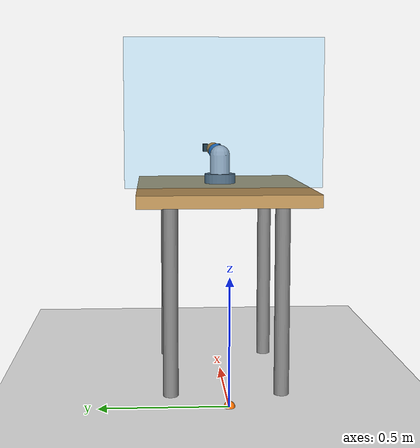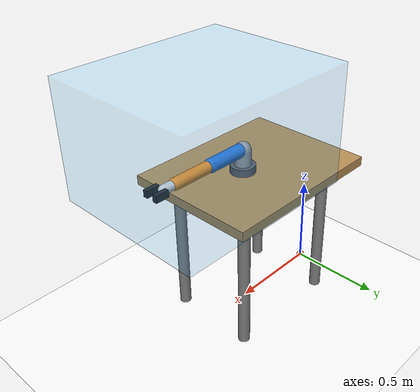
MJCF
<mujoco model="teleop_five_dof_scene">
  <compiler angle="radian" eulerseq="xyz" autolimits="true"/>
  <option timestep="0.002" gravity="0 0 -9.81"/>

  <asset>
    <texture name="texgrid" builtin="checker" width="512" height="512" rgb1="0.93 0.93 0.93" rgb2="0.85 0.85 0.85"/>
    <material name="floor_mat" texture="texgrid" texrepeat="6 6"/>
    <material name="workspace_mat" rgba="0.2 0.7 1.0 0.08"/>
  </asset>

  <contact>
    <exclude body1="robot_root" body2="table"/>
  </contact>

  <worldbody>
    <light directional="true" diffuse="0.84 0.84 0.84" pos="1 3 8" dir="-1 -3 -8"/>
    <geom name="floor" type="plane" size="4 4 0.01" rgba="1 1 1 1" material="floor_mat"
          contype="1" conaffinity="1"/>

    <!-- ── Table ── -->
    <!-- Table centre in world: x=0.45 y=0 z=0.785
         Tabletop is ±0.025 in Z → top surface at world-z = 0.810 -->
    <body name="table" pos="0.45 0 0.785">
      <geom name="tabletop" type="box" pos="0 0 0" size="0.45 0.35 0.025"
            rgba="0.73 0.57 0.34 1" contype="1" conaffinity="1"/>
      <geom name="table_leg1" type="cylinder" pos=" 0.30  0.22 -0.40" size="0.03 0.40"
            rgba="0.50 0.50 0.50 1"/>
      <geom name="table_leg2" type="cylinder" pos="-0.30  0.22 -0.40" size="0.03 0.40"
            rgba="0.50 0.50 0.50 1"/>
      <geom name="table_leg3" type="cylinder" pos=" 0.30 -0.22 -0.40" size="0.03 0.40"
            rgba="0.50 0.50 0.50 1"/>
      <geom name="table_leg4" type="cylinder" pos="-0.30 -0.22 -0.40" size="0.03 0.40"
            rgba="0.50 0.50 0.50 1"/>
    </body>

    <!-- ── Five-DoF arm ──
         robot_root is at world z = 0.810 (table top surface).
         All arm geoms inherit contype/conaffinity=1 → naturally collide with tabletop.
    -->
    <body name="robot_root" pos="0.52 0 0.810">
      <geom name="base_plate" type="cylinder" pos="0 0 0.02" size="0.065 0.02"
            rgba="0.35 0.35 0.38 1"
            contype="0" conaffinity="0"/>  <!-- base_plate is excluded from collision; table exclude above covers root body -->

      <!-- J1 base yaw about Z -->
      <body name="link_yaw" pos="0 0 0.035">
        <joint name="jnt1_base_z" type="hinge" axis="0 0 1"
               range="-2.793 2.793" damping="25" armature="0.06"/>
        <geom name="g_yaw" type="capsule" fromto="0 0 0 0 0 0.085" size="0.042"
              rgba="0.62 0.62 0.66 1"/>

        <!-- J2 shoulder pitch.
             axis="0 -1 0" → positive angle lifts the arm toward +Z (up).
             range: -0.524 rad (-30°) to 2.094 rad (+120°) — matches robot_kinematics.yaml -->
        <body name="shoulder_yaw" pos="0 0 0.088">
          <joint name="jnt2_shoulder_y" type="hinge" axis="0 -1 0"
                 range="-0.524 2.094"
                 damping="20" armature="0.04"
                 solreflimit="0.005 1" solimplimit="0 0.95 0.001 0.5 2"/>
          <geom name="upper_arm" type="capsule" fromto="0 0 0 0.22 0 0" size="0.035"
                rgba="0.15 0.45 0.85 1"/>
          <body name="elbow_hub" pos="0.22 0 0">
            <!-- J3 elbow: axis="0 -1 0".
                 range: -2.618 rad (-150°) to 0.175 rad (+10°) — matches robot_kinematics.yaml -->
            <joint name="jnt3_elbow_y" type="hinge" axis="0 -1 0"
                   range="-2.618 0.175"
                   damping="14" armature="0.03"
                   solreflimit="0.005 1" solimplimit="0 0.95 0.001 0.5 2"/>
            <geom name="forearm" type="capsule" fromto="0 0 0 0.22 0 0" size="0.03"
                  rgba="0.92 0.55 0.12 1"/>
            <body name="wrist_pitch_hub" pos="0.22 0 0">
              <!-- J4 wrist pitch: axis="0 -1 0". range ±120° = ±2.094 rad -->
              <joint name="jnt4_wrist_y" type="hinge" axis="0 -1 0"
                     range="-2.094 2.094" damping="12" armature="0.02"/>
              <geom name="wrist_geom" type="capsule" fromto="0 0 0 0.065 0 0" size="0.024"
                    rgba="0.82 0.82 0.82 1"/>
              <site name="eef_tip" pos="0.065 0 0" size="0.015" rgba="0 1 0 0"/>
              <body name="wrist_roll" pos="0.065 0 0">
                <!-- J5 gripper roll: X-axis rotation (forearm axial spin). ±180° = ±3.142 rad -->
                <joint name="jnt5_gripper_z" type="hinge" axis="1 0 0"
                       range="-3.142 3.142" damping="10" armature="0.02"/>
                <!-- Visual two-prong gripper; collision off so fingers don't fight physics -->
                <geom name="finger_l" type="box" pos="0.04  0.03 0" size="0.035 0.012 0.018"
                      rgba="0.12 0.12 0.12 1" contype="0" conaffinity="0"/>
                <geom name="finger_r" type="box" pos="0.04 -0.03 0" size="0.035 0.012 0.018"
                      rgba="0.12 0.12 0.12 1" contype="0" conaffinity="0"/>
              </body>
            </body>
          </body>
        </body>
      </body>
    </body>

    <body name="workspace_box" pos="0.52 0 0.810">
      <geom name="ws_volume" type="box" pos="0.25 0 0.30"
            size="0.48 0.40 0.30"
            rgba="0.2 0.7 1.0 0.04"
            contype="0" conaffinity="0"/>
    </body>

    <body name="wrist_goal" mocap="true">
      <geom name="goal_ball" type="sphere" pos="0 0 0" size="0.022"
            rgba="1 0.45 0.0 0.90" contype="0" conaffinity="0"/>
    </body>

    <camera name="teleop_cam" mode="fixed" pos="1.95 1.95 1.42" euler="-28 -45 52"/>
  </worldbody>
</mujoco>
